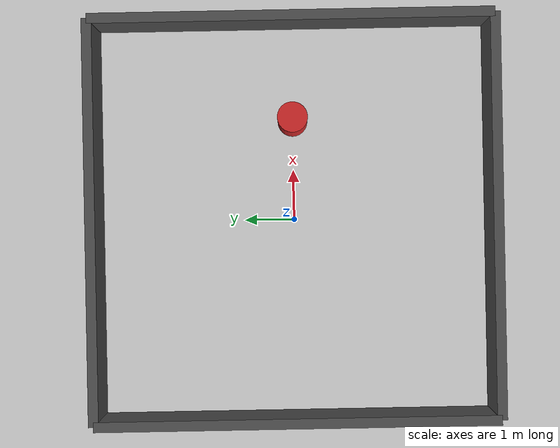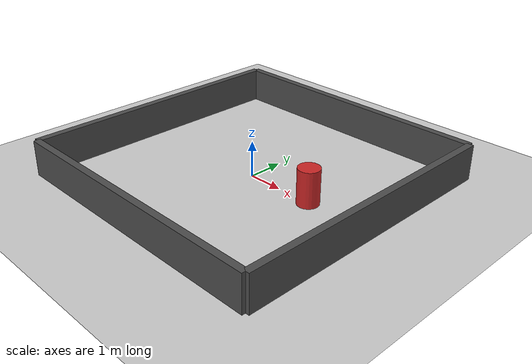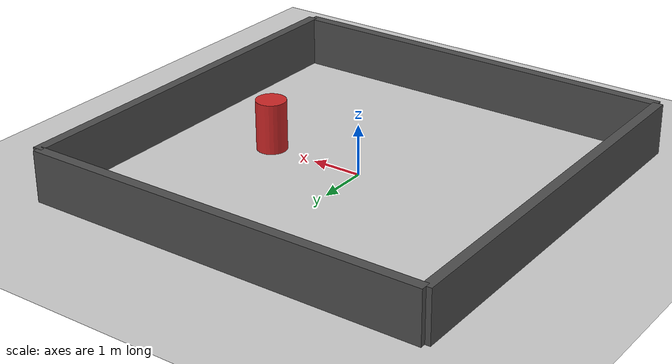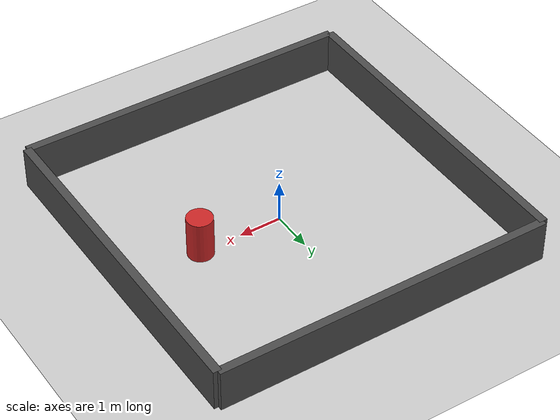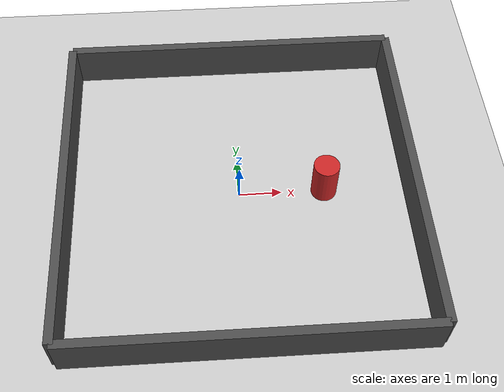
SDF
<?xml version="1.0" ?>
<sdf version="1.6">
  <world name="drl_dynamic_world">

    <include>
      <uri>model://sun</uri>
    </include>

    <include>
      <uri>model://ground_plane</uri>
    </include>

    <physics type="ode">
      <real_time_update_rate>1000.0</real_time_update_rate>
      <max_step_size>0.001</max_step_size>
      <real_time_factor>1</real_time_factor>
    </physics>

    <model name="chaos_cylinder">
      <pose>2.0 0 0.5 0 0 0</pose>
      <link name="link">
        <collision name="collision">
          <geometry>
            <cylinder><radius>0.3</radius><length>1.0</length></cylinder>
          </geometry>
        </collision>
        <visual name="visual">
          <geometry>
            <cylinder><radius>0.3</radius><length>1.0</length></cylinder>
          </geometry>
          <material>
            <script>
              <uri>file://media/materials/scripts/gazebo.material</uri>
              <name>Gazebo/Red</name>
            </script>
          </material>
        </visual>
      </link>

      <plugin name="obstacle_planar_move" filename="libgazebo_ros_planar_move.so">
        <ros>
          <namespace>/obstacle</namespace>
          <remapping>cmd_vel:=cmd_vel</remapping>
          <remapping>odom:=odom</remapping>
        </ros>
        <update_rate>100.0</update_rate>
        <publish_rate>10.0</publish_rate>
        <publish_odom>true</publish_odom>
        <publish_odom_tf>true</publish_odom_tf>
        <odometry_frame>odom</odometry_frame>
        <robot_base_frame>link</robot_base_frame>
        <covariance_x>0.0001</covariance_x>
        <covariance_y>0.0001</covariance_y>
        <covariance_yaw>0.01</covariance_yaw>
      </plugin>
    </model>

    <model name="wall_1">
      <pose>4 0 0.5 0 0 0</pose>
      <static>true</static>
      <link name="link"><collision name="c"><geometry><box><size>0.2 8 1</size></box></geometry></collision><visual name="v"><geometry><box><size>0.2 8 1</size></box></geometry><material><script><name>Gazebo/DarkGrey</name></script></material></visual></link>
    </model>
    <model name="wall_2">
      <pose>-4 0 0.5 0 0 0</pose>
      <static>true</static>
      <link name="link"><collision name="c"><geometry><box><size>0.2 8 1</size></box></geometry></collision><visual name="v"><geometry><box><size>0.2 8 1</size></box></geometry><material><script><name>Gazebo/DarkGrey</name></script></material></visual></link>
    </model>
    <model name="wall_3">
      <pose>0 4 0.5 0 0 0</pose>
      <static>true</static>
      <link name="link"><collision name="c"><geometry><box><size>8 0.2 1</size></box></geometry></collision><visual name="v"><geometry><box><size>8 0.2 1</size></box></geometry><material><script><name>Gazebo/DarkGrey</name></script></material></visual></link>
    </model>
    <model name="wall_4">
      <pose>0 -4 0.5 0 0 0</pose>
      <static>true</static>
      <link name="link"><collision name="c"><geometry><box><size>8 0.2 1</size></box></geometry></collision><visual name="v"><geometry><box><size>8 0.2 1</size></box></geometry><material><script><name>Gazebo/DarkGrey</name></script></material></visual></link>
    </model>

  </world>
</sdf>
